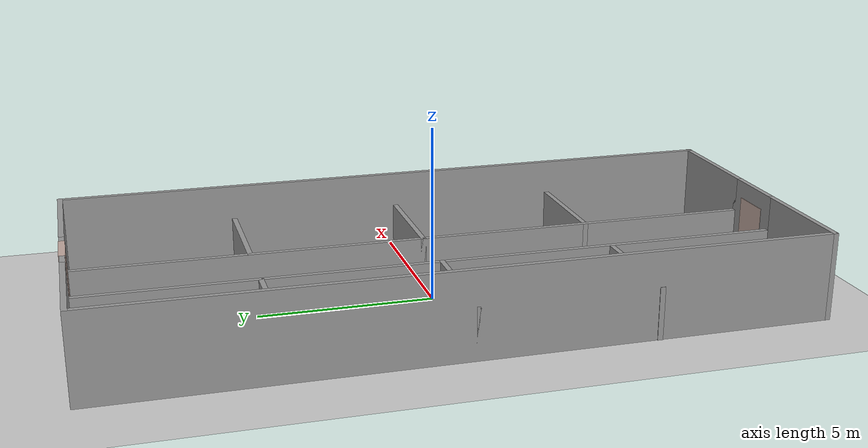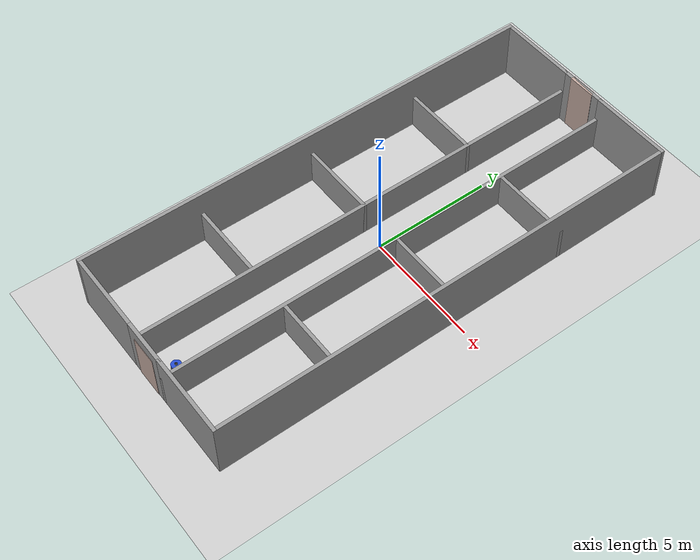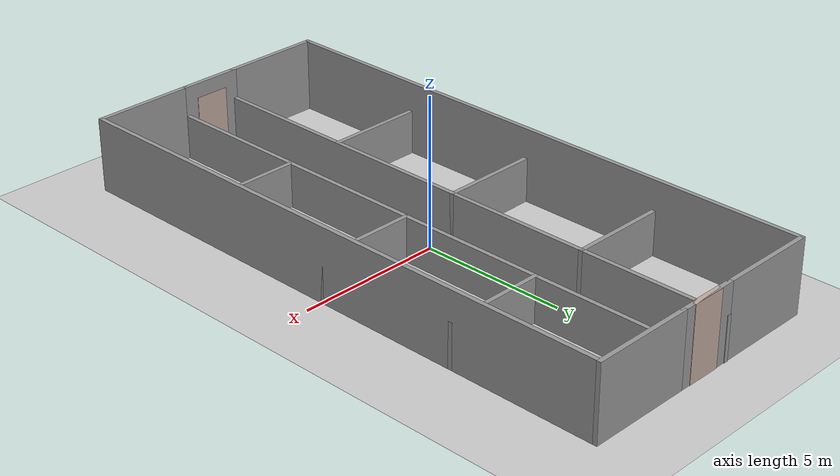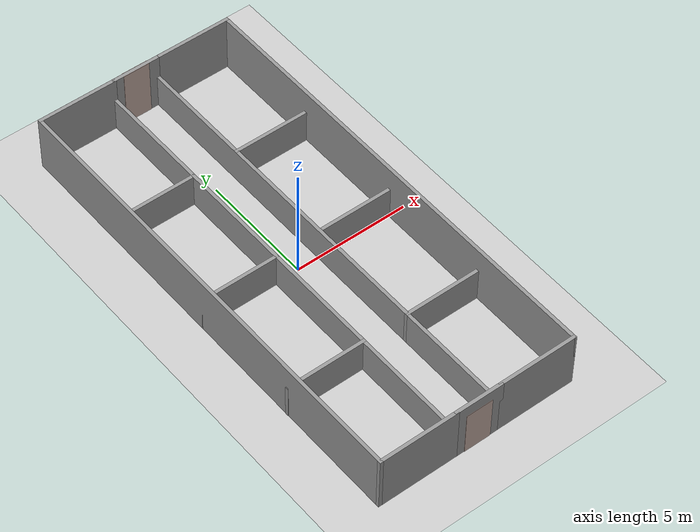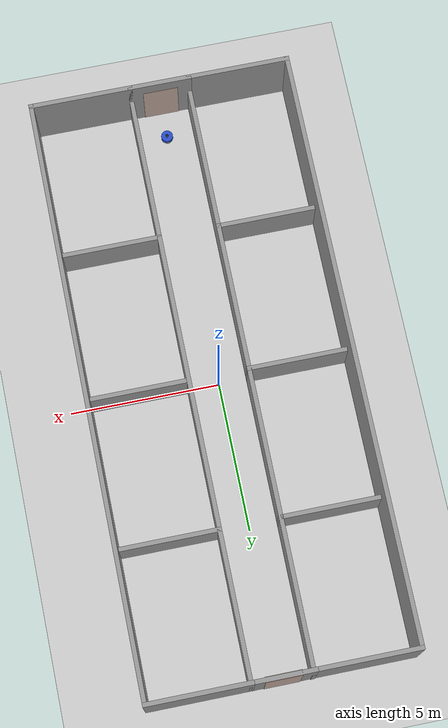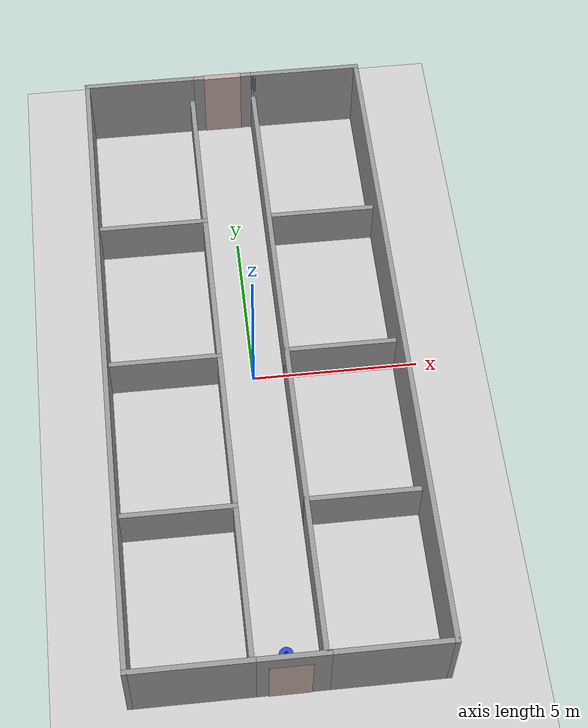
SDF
<sdf version="1.7">
 <world name="default">
  <light name="sun" type="directional">
   <pose>0 0 10 0 -0 0</pose>
   <diffuse>0.8 0.8 0.8 1</diffuse>
   <specular>0.2 0.2 0.2 1</specular>
   <attenuation>
    <range>1000</range>
    <constant>0.9</constant>
    <linear>0.01</linear>
    <quadratic>0.001</quadratic>
   </attenuation>
   <direction>-0.5 0.1 -0.9</direction>
   <spot><inner_angle>0</inner_angle><outer_angle>0</outer_angle><falloff>0</falloff></spot>
  </light>
  <model name="ground_plane">
   <static>1</static>
   <link name="link">
    <collision name="collision">
     <geometry><plane><normal>0 0 1</normal><size>100 100</size></plane></geometry>
     <surface>
      <contact><collide_bitmask>65535</collide_bitmask></contact>
      <friction><ode><mu>100</mu><mu2>50</mu2></ode></friction>
     </surface>
    </collision>
    <visual name="visual">
     <cast_shadows>0</cast_shadows>
     <geometry><plane><normal>0 0 1</normal><size>100 100</size></plane></geometry>
     <material>
      <script><uri>file://media/materials/scripts/gazebo.material</uri><name>Gazebo/Grey</name></script>
     </material>
    </visual>
   </link>
  </model>
  <gravity>0 0 -9.8</gravity>
  <magnetic_field>6e-06 2.3e-05 -4.2e-05</magnetic_field>
  <atmosphere type="adiabatic"/>
  <physics type="ode">
   <max_step_size>0.001</max_step_size>
   <real_time_factor>1</real_time_factor>
   <real_time_update_rate>1000</real_time_update_rate>
  </physics>
  <scene><ambient>0.4 0.4 0.4 1</ambient><background>0.7 0.7 0.7 1</background><shadows>1</shadows></scene>
  <spherical_coordinates>
   <surface_model>EARTH_WGS84</surface_model>
   <latitude_deg>0</latitude_deg>
   <longitude_deg>0</longitude_deg>
   <elevation>0</elevation>
   <heading_deg>0</heading_deg>
  </spherical_coordinates>
  <model name="shed">
   <pose>-0.009999 0.01 0 0 -0 0</pose>
   <link name="Wall_0">
    <collision name="Wall_0_Collision">
     <geometry><box><size>2.15 0.15 2.5</size></box></geometry>
     <pose>0 0 1.25 0 -0 0</pose>
    </collision>
    <visual name="Wall_0_Visual">
     <pose>0 0 1.25 0 -0 0</pose>
     <geometry><box><size>2.15 0.15 2.5</size></box></geometry>
     <material>
      <script><uri>file://media/materials/scripts/gazebo.material</uri><name>Gazebo/Grey</name></script>
      <ambient>1 1 1 1</ambient>
     </material>
     <meta><layer>0</layer></meta>
    </visual>
    <pose>0.009999 -10.01 0 0 -0 0</pose>
   </link>
   <link name="Wall_10">
    <collision name="Wall_10_Collision">
     <geometry><box><size>3.52 0.15 1.5</size></box></geometry>
     <pose>0 0 0.75 0 -0 0</pose>
    </collision>
    <visual name="Wall_10_Visual">
     <pose>0 0 0.75 0 -0 0</pose>
     <geometry><box><size>3.52 0.15 1.5</size></box></geometry>
     <material>
      <script><uri>file://media/materials/scripts/gazebo.material</uri><name>Gazebo/Grey</name></script>
      <ambient>1 1 1 1</ambient>
     </material>
     <meta><layer>0</layer></meta>
    </visual>
    <pose>-2.675 -5.01 0 0 -0 3.14159</pose>
   </link>
   <link name="Wall_13">
    <collision name="Wall_13_Collision">
     <geometry><box><size>3.5 0.15 1.5</size></box></geometry>
     <pose>0 0 0.75 0 -0 0</pose>
    </collision>
    <visual name="Wall_13_Visual">
     <pose>0 0 0.75 0 -0 0</pose>
     <geometry><box><size>3.5 0.15 1.5</size></box></geometry>
     <material>
      <script><uri>file://media/materials/scripts/gazebo.material</uri><name>Gazebo/Grey</name></script>
      <ambient>1 1 1 1</ambient>
     </material>
     <meta><layer>0</layer></meta>
    </visual>
    <pose>-2.665 -0.01 0 0 -0 3.14159</pose>
   </link>
   <link name="Wall_15">
    <collision name="Wall_15_Collision">
     <geometry><box><size>3.5 0.15 1.5</size></box></geometry>
     <pose>0 0 0.75 0 -0 0</pose>
    </collision>
    <visual name="Wall_15_Visual">
     <pose>0 0 0.75 0 -0 0</pose>
     <geometry><box><size>3.5 0.15 1.5</size></box></geometry>
     <material>
      <script><uri>file://media/materials/scripts/gazebo.material</uri><name>Gazebo/Grey</name></script>
      <ambient>1 1 1 1</ambient>
     </material>
     <meta><layer>0</layer></meta>
    </visual>
    <pose>-2.665 4.99 0 0 -0 3.14159</pose>
   </link>
   <link name="Wall_17">
    <collision name="Wall_17_Collision">
     <geometry><box><size>3.5 0.15 2.5</size></box></geometry>
     <pose>0 0 1.25 0 -0 0</pose>
    </collision>
    <visual name="Wall_17_Visual">
     <pose>0 0 1.25 0 -0 0</pose>
     <geometry><box><size>3.5 0.15 2.5</size></box></geometry>
     <material>
      <script><uri>file://media/materials/scripts/gazebo.material</uri><name>Gazebo/Grey</name></script>
      <ambient>1 1 1 1</ambient>
     </material>
     <meta><layer>0</layer></meta>
    </visual>
    <pose>-2.665 9.99 0 0 -0 3.14159</pose>
   </link>
   <link name="Wall_2">
    <collision name="Wall_2_Collision">
     <geometry><box><size>20.17 0.15 1.5</size></box></geometry>
     <pose>0 0 0.75 0 -0 0</pose>
    </collision>
    <visual name="Wall_2_Visual">
     <pose>0 0 0.75 0 -0 0</pose>
     <geometry><box><size>20.17 0.15 1.5</size></box></geometry>
     <material>
      <script><uri>file://media/materials/scripts/gazebo.material</uri><name>Gazebo/Grey</name></script>
      <ambient>1 1 1 1</ambient>
     </material>
     <meta><layer>0</layer></meta>
    </visual>
    <pose>-0.990001 -0 0 0 -0 1.5708</pose>
   </link>
   <link name="Wall_20">
    <collision name="Wall_20_Collision">
     <geometry><box><size>20.15 0.15 1.5</size></box></geometry>
     <pose>0 0 0.75 0 -0 0</pose>
    </collision>
    <visual name="Wall_20_Visual">
     <pose>0 0 0.75 0 -0 0</pose>
     <geometry><box><size>20.15 0.15 1.5</size></box></geometry>
     <material>
      <script><uri>file://media/materials/scripts/gazebo.material</uri><name>Gazebo/Grey</name></script>
      <ambient>1 1 1 1</ambient>
     </material>
     <meta><layer>0</layer></meta>
    </visual>
    <pose>1.01 -0.01 0 0 -0 1.5708</pose>
   </link>
   <link name="Wall_22">
    <collision name="Wall_22_Collision">
     <geometry><box><size>3.5 0.15 2.5</size></box></geometry>
     <pose>0 0 1.25 0 -0 0</pose>
    </collision>
    <visual name="Wall_22_Visual">
     <pose>0 0 1.25 0 -0 0</pose>
     <geometry><box><size>3.5 0.15 2.5</size></box></geometry>
     <material>
      <script><uri>file://media/materials/scripts/gazebo.material</uri><name>Gazebo/Grey</name></script>
      <ambient>1 1 1 1</ambient>
     </material>
     <meta><layer>0</layer></meta>
    </visual>
    <pose>2.685 -10.01 0 0 -0 0</pose>
   </link>
   <link name="Wall_24">
    <collision name="Wall_24_Collision">
     <geometry><box><size>20 0.15 2.5</size></box></geometry>
     <pose>0 0 1.25 0 -0 0</pose>
    </collision>
    <visual name="Wall_24_Visual">
     <pose>0 0 1.25 0 -0 0</pose>
     <geometry><box><size>20 0.15 2.5</size></box></geometry>
     <material>
      <script><uri>file://media/materials/scripts/gazebo.material</uri><name>Gazebo/Grey</name></script>
      <ambient>1 1 1 1</ambient>
     </material>
     <meta><layer>0</layer></meta>
    </visual>
    <pose>4.36 -0.085 0 0 -0 1.5708</pose>
   </link>
   <link name="Wall_26">
    <collision name="Wall_26_Collision">
     <geometry><box><size>3.5 0.15 1.5</size></box></geometry>
     <pose>0 0 0.75 0 -0 0</pose>
    </collision>
    <visual name="Wall_26_Visual">
     <pose>0 0 0.75 0 -0 0</pose>
     <geometry><box><size>3.5 0.15 1.5</size></box></geometry>
     <material>
      <script><uri>file://media/materials/scripts/gazebo.material</uri><name>Gazebo/Grey</name></script>
      <ambient>1 1 1 1</ambient>
     </material>
     <meta><layer>0</layer></meta>
    </visual>
    <pose>2.685 -5.01 0 0 -0 0</pose>
   </link>
   <link name="Wall_28">
    <collision name="Wall_28_Collision">
     <geometry><box><size>3.5 0.15 1.5</size></box></geometry>
     <pose>0 0 0.75 0 -0 0</pose>
    </collision>
    <visual name="Wall_28_Visual">
     <pose>0 0 0.75 0 -0 0</pose>
     <geometry><box><size>3.5 0.15 1.5</size></box></geometry>
     <material>
      <script><uri>file://media/materials/scripts/gazebo.material</uri><name>Gazebo/Grey</name></script>
      <ambient>1 1 1 1</ambient>
     </material>
     <meta><layer>0</layer></meta>
    </visual>
    <pose>2.685 -0.01 0 0 -0 0</pose>
   </link>
   <link name="Wall_30">
    <collision name="Wall_30_Collision">
     <geometry><box><size>3.5 0.15 1.5</size></box></geometry>
     <pose>0 0 0.75 0 -0 0</pose>
    </collision>
    <visual name="Wall_30_Visual">
     <pose>0 0 0.75 0 -0 0</pose>
     <geometry><box><size>3.5 0.15 1.5</size></box></geometry>
     <material>
      <script><uri>file://media/materials/scripts/gazebo.material</uri><name>Gazebo/Grey</name></script>
      <ambient>1 1 1 1</ambient>
     </material>
     <meta><layer>0</layer></meta>
    </visual>
    <pose>2.685 4.99 0 0 -0 0</pose>
   </link>
   <link name="Wall_32">
    <collision name="Wall_32_Collision">
     <geometry><box><size>3.5 0.15 2.5</size></box></geometry>
     <pose>0 0 1.25 0 -0 0</pose>
    </collision>
    <visual name="Wall_32_Visual">
     <pose>0 0 1.25 0 -0 0</pose>
     <geometry><box><size>3.5 0.15 2.5</size></box></geometry>
     <material>
      <script><uri>file://media/materials/scripts/gazebo.material</uri><name>Gazebo/Grey</name></script>
      <ambient>1 1 1 1</ambient>
     </material>
     <meta><layer>0</layer></meta>
    </visual>
    <pose>2.685 9.99 0 0 -0 0</pose>
   </link>
   <link name="Wall_36">
    <collision name="Wall_36_Collision">
     <geometry><box><size>2.15 0.15 2.5</size></box></geometry>
     <pose>0 0 1.25 0 -0 0</pose>
    </collision>
    <visual name="Wall_36_Visual">
     <pose>0 0 1.25 0 -0 0</pose>
     <geometry><box><size>2.15 0.15 2.5</size></box></geometry>
     <material>
      <script><uri>file://media/materials/scripts/gazebo.material</uri><name>Gazebo/Grey</name></script>
      <ambient>1 1 1 1</ambient>
     </material>
     <meta><layer>0</layer></meta>
    </visual>
    <pose>0.009999 9.99 0 0 -0 0</pose>
   </link>
   <link name="Wall_4">
    <collision name="Wall_4_Collision">
     <geometry><box><size>3.5 0.15 2.5</size></box></geometry>
     <pose>0 0 1.25 0 -0 0</pose>
    </collision>
    <visual name="Wall_4_Visual">
     <pose>0 0 1.25 0 -0 0</pose>
     <geometry><box><size>3.5 0.15 2.5</size></box></geometry>
     <material>
      <script><uri>file://media/materials/scripts/gazebo.material</uri><name>Gazebo/Grey</name></script>
      <ambient>1 1 1 1</ambient>
     </material>
     <meta><layer>0</layer></meta>
    </visual>
    <pose>-2.665 -10.01 0 0 -0 3.14159</pose>
   </link>
   <link name="Wall_6">
    <collision name="Wall_6_Collision">
     <geometry><box><size>20.15 0.15 2.5</size></box></geometry>
     <pose>0 0 1.25 0 -0 0</pose>
    </collision>
    <visual name="Wall_6_Visual">
     <pose>0 0 1.25 0 -0 0</pose>
     <geometry><box><size>20.15 0.15 2.5</size></box></geometry>
     <material>
      <script><uri>file://media/materials/scripts/gazebo.material</uri><name>Gazebo/Grey</name></script>
      <ambient>1 1 1 1</ambient>
     </material>
     <meta><layer>0</layer></meta>
    </visual>
    <pose>-4.34 -0.01 0 0 -0 1.5708</pose>
   </link>
   <static>1</static>
  </model>
  <model name="mrobot">
   <link name="base_footprint">
    <inertial>
     <pose>0 0 0.110522 0 -0 0</pose>
     <mass>20.1</mass>
     <inertia><ixx>0.253764</ixx><ixy>0</ixy><ixz>0</ixz><iyy>0.253764</iyy><iyz>0</iyz><izz>0.41</izz></inertia>
    </inertial>
    <collision name="base_footprint_fixed_joint_lump__base_link_collision">
     <pose>0 0 0.11 0 -0 0</pose>
     <geometry><cylinder><length>0.16</length><radius>0.2</radius></cylinder></geometry>
    </collision>
    <collision name="base_footprint_fixed_joint_lump__laser_link_collision_1">
     <pose>0 0 0.215 0 -0 0</pose>
     <geometry><cylinder><length>0.06</length><radius>0.05</radius></cylinder></geometry>
    </collision>
    <visual name="base_footprint_visual"><geometry><box><size>0.001 0.001 0.001</size></box></geometry></visual>
    <visual name="base_footprint_fixed_joint_lump__base_link_visual_1">
     <pose>0 0 0.11 0 -0 0</pose>
     <geometry><cylinder><length>0.16</length><radius>0.2</radius></cylinder></geometry>
     <material>
      <script><name>Gazebo/Blue</name><uri>file://media/materials/scripts/gazebo.material</uri></script>
     </material>
    </visual>
    <visual name="base_footprint_fixed_joint_lump__laser_link_visual_2">
     <pose>0 0 0.215 0 -0 0</pose>
     <geometry><cylinder><length>0.05</length><radius>0.05</radius></cylinder></geometry>
     <material>
      <script><name>Gazebo/Black</name><uri>file://media/materials/scripts/gazebo.material</uri></script>
     </material>
    </visual>
    <sensor name="rplidar" type="ray">
     <visualize>0</visualize>
     <update_rate>5.5</update_rate>
     <ray>
      <scan>
       <horizontal>
        <samples>360</samples>
        <resolution>1</resolution>
        <min_angle>-3</min_angle>
        <max_angle>3</max_angle>
       </horizontal>
       <vertical><samples>1</samples><min_angle>0</min_angle><max_angle>0</max_angle></vertical>
      </scan>
      <range><min>0.1</min><max>6</max><resolution>0.01</resolution></range>
      <noise><type>gaussian</type><mean>0</mean><stddev>0.01</stddev></noise>
     </ray>
     <plugin name="gazebo_rplidar" filename="libgazebo_ros_laser.so">
      <topicName>/scan</topicName>
      <frameName>laser_link</frameName>
      <robotNamespace>/</robotNamespace>
     </plugin>
     <pose>0 0 0.215 0 -0 0</pose>
    </sensor>
   </link>
   <joint name="back_caster_joint" type="revolute">
    <pose relative_to="base_footprint">0.18 0 0.015 0 -0 0</pose>
    <parent>base_footprint</parent>
    <child>back_caster_link</child>
    <axis>
     <xyz>0 1 0</xyz>
     <limit><lower>-1e+16</lower><upper>1e+16</upper></limit>
     <dynamics><spring_reference>0</spring_reference><spring_stiffness>0</spring_stiffness></dynamics>
    </axis>
   </joint>
   <link name="back_caster_link">
    <pose relative_to="back_caster_joint">0 0 0 0 -0 0</pose>
    <inertial>
     <mass>0.5</mass>
     <inertia><ixx>4.5e-05</ixx><ixy>0</ixy><ixz>0</ixz><iyy>4.5e-05</iyy><iyz>0</iyz><izz>4.5e-05</izz></inertia>
    </inertial>
    <collision name="back_caster_link_collision">
     <geometry><sphere><radius>0.015</radius></sphere></geometry>
    </collision>
    <visual name="back_caster_link_visual">
     <geometry><sphere><radius>0.015</radius></sphere></geometry>
     <material>
      <script><name>Gazebo/Black</name><uri>file://media/materials/scripts/gazebo.material</uri></script>
     </material>
    </visual>
   </link>
   <joint name="front_caster_joint" type="revolute">
    <pose relative_to="base_footprint">-0.18 0 0.015 0 -0 0</pose>
    <parent>base_footprint</parent>
    <child>front_caster_link</child>
    <axis>
     <xyz>0 1 0</xyz>
     <limit><lower>-1e+16</lower><upper>1e+16</upper></limit>
     <dynamics><spring_reference>0</spring_reference><spring_stiffness>0</spring_stiffness></dynamics>
    </axis>
   </joint>
   <link name="front_caster_link">
    <pose relative_to="front_caster_joint">0 0 0 0 -0 0</pose>
    <inertial>
     <mass>0.5</mass>
     <inertia><ixx>4.5e-05</ixx><ixy>0</ixy><ixz>0</ixz><iyy>4.5e-05</iyy><iyz>0</iyz><izz>4.5e-05</izz></inertia>
    </inertial>
    <collision name="front_caster_link_collision">
     <geometry><sphere><radius>0.015</radius></sphere></geometry>
    </collision>
    <visual name="front_caster_link_visual">
     <geometry><sphere><radius>0.015</radius></sphere></geometry>
     <material>
      <script><name>Gazebo/Black</name><uri>file://media/materials/scripts/gazebo.material</uri></script>
     </material>
    </visual>
   </link>
   <joint name="left_wheel_joint" type="revolute">
    <pose relative_to="base_footprint">0 0.19 0.06 0 -0 0</pose>
    <parent>base_footprint</parent>
    <child>left_wheel_link</child>
    <axis>
     <xyz>0 1 0</xyz>
     <limit><lower>-1e+16</lower><upper>1e+16</upper></limit>
     <dynamics><spring_reference>0</spring_reference><spring_stiffness>0</spring_stiffness></dynamics>
    </axis>
   </joint>
   <link name="left_wheel_link">
    <pose relative_to="left_wheel_joint">0 0 0 0 -0 0</pose>
    <inertial>
     <mass>2</mass>
     <inertia>
      <ixx>0.00190417</ixx>
      <ixy>0</ixy>
      <ixz>0</ixz>
      <iyy>0.00190417</iyy>
      <iyz>0</iyz>
      <izz>0.0036</izz>
     </inertia>
    </inertial>
    <collision name="left_wheel_link_collision">
     <pose>0 0 0 1.5708 -0 0</pose>
     <geometry><cylinder><length>0.025</length><radius>0.06</radius></cylinder></geometry>
    </collision>
    <visual name="left_wheel_link_visual">
     <pose>0 0 0 1.5708 -0 0</pose>
     <geometry><cylinder><length>0.025</length><radius>0.06</radius></cylinder></geometry>
     <material>
      <script><name>Gazebo/Gray</name><uri>file://media/materials/scripts/gazebo.material</uri></script>
     </material>
    </visual>
   </link>
   <joint name="right_wheel_joint" type="revolute">
    <pose relative_to="base_footprint">0 -0.19 0.06 0 -0 0</pose>
    <parent>base_footprint</parent>
    <child>right_wheel_link</child>
    <axis>
     <xyz>0 1 0</xyz>
     <limit><lower>-1e+16</lower><upper>1e+16</upper></limit>
     <dynamics><spring_reference>0</spring_reference><spring_stiffness>0</spring_stiffness></dynamics>
    </axis>
   </joint>
   <link name="right_wheel_link">
    <pose relative_to="right_wheel_joint">0 0 0 0 -0 0</pose>
    <inertial>
     <mass>2</mass>
     <inertia>
      <ixx>0.00190417</ixx>
      <ixy>0</ixy>
      <ixz>0</ixz>
      <iyy>0.00190417</iyy>
      <iyz>0</iyz>
      <izz>0.0036</izz>
     </inertia>
    </inertial>
    <collision name="right_wheel_link_collision">
     <pose>0 0 0 1.5708 -0 0</pose>
     <geometry><cylinder><length>0.025</length><radius>0.06</radius></cylinder></geometry>
    </collision>
    <visual name="right_wheel_link_visual">
     <pose>0 0 0 1.5708 -0 0</pose>
     <geometry><cylinder><length>0.025</length><radius>0.06</radius></cylinder></geometry>
     <material>
      <script><name>Gazebo/Gray</name><uri>file://media/materials/scripts/gazebo.material</uri></script>
     </material>
    </visual>
   </link>
   <static>0</static>
   <plugin name="differential_drive_controller" filename="libgazebo_ros_diff_drive.so">
    <rosDebugLevel>Debug</rosDebugLevel>
    <publishWheelTF>0</publishWheelTF>
    <robotNamespace>/</robotNamespace>
    <publishOdomTf>1</publishOdomTf>
    <publishTf>1</publishTf>
    <publishWheelJointState>0</publishWheelJointState>
    <alwaysOn>1</alwaysOn>
    <updateRate>50</updateRate>
    <legacyMode>1</legacyMode>
    <leftJoint>left_wheel_joint</leftJoint>
    <rightJoint>right_wheel_joint</rightJoint>
    <wheelSeparation>0.38</wheelSeparation>
    <wheelDiameter>0.12</wheelDiameter>
    <broadcastTF>1</broadcastTF>
    <wheelTorque>30</wheelTorque>
    <wheelSeparation>0.46</wheelSeparation>
    <wheelAcceleration>1</wheelAcceleration>
    <commandTopic>cmd_vel</commandTopic>
    <odometryFrame>odom</odometryFrame>
    <odometryTopic>odom</odometryTopic>
    <odometrySource>world</odometrySource>
    <robotBaseFrame>base_footprint</robotBaseFrame>
   </plugin>
   <pose>-0.001373 -8.99829 0 -0 -0 -6.3e-05</pose>
  </model>
  <model name="door">
   <link name="Wall_0">
    <collision name="Wall_0_Collision">
     <geometry><box><size>1.18 0.18 2</size></box></geometry>
     <pose>0 0 1 0 -0 0</pose>
    </collision>
    <visual name="Wall_0_Visual">
     <pose>0 0 1 0 -0 0</pose>
     <geometry><box><size>1.18 0.18 2</size></box></geometry>
     <material>
      <script><uri>file://media/materials/scripts/gazebo.material</uri><name>Gazebo/Grey</name></script>
      <ambient>0.760784 0.662745 0.627451 1</ambient>
     </material>
     <meta><layer>0</layer></meta>
    </visual>
    <pose>0 -10 0 0 -0 0</pose>
   </link>
   <link name="Wall_2">
    <collision name="Wall_2_Collision">
     <geometry><box><size>1.18 0.18 2.5</size></box></geometry>
     <pose>0 0 1.25 0 -0 0</pose>
    </collision>
    <visual name="Wall_2_Visual">
     <pose>0 0 1.25 0 -0 0</pose>
     <geometry><box><size>1.18 0.18 2.5</size></box></geometry>
     <material>
      <script><uri>file://media/materials/scripts/gazebo.material</uri><name>Gazebo/Grey</name></script>
      <ambient>0.760784 0.662745 0.627451 1</ambient>
     </material>
     <meta><layer>0</layer></meta>
    </visual>
    <pose>0 10 0 0 -0 0</pose>
   </link>
   <static>1</static>
  </model>
 </world>
</sdf>
